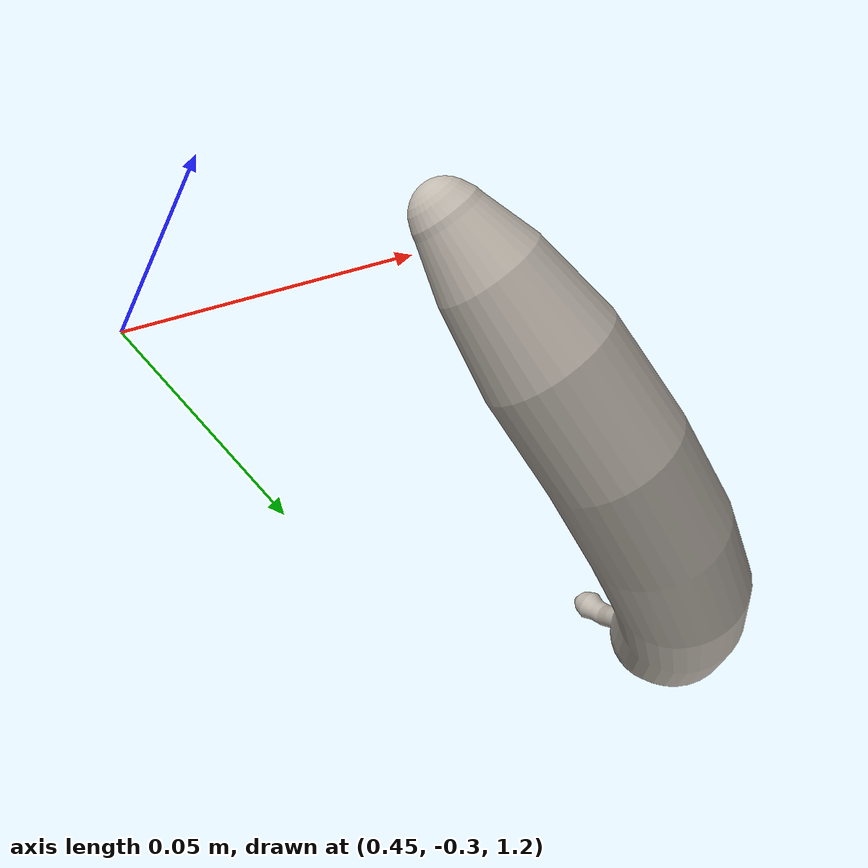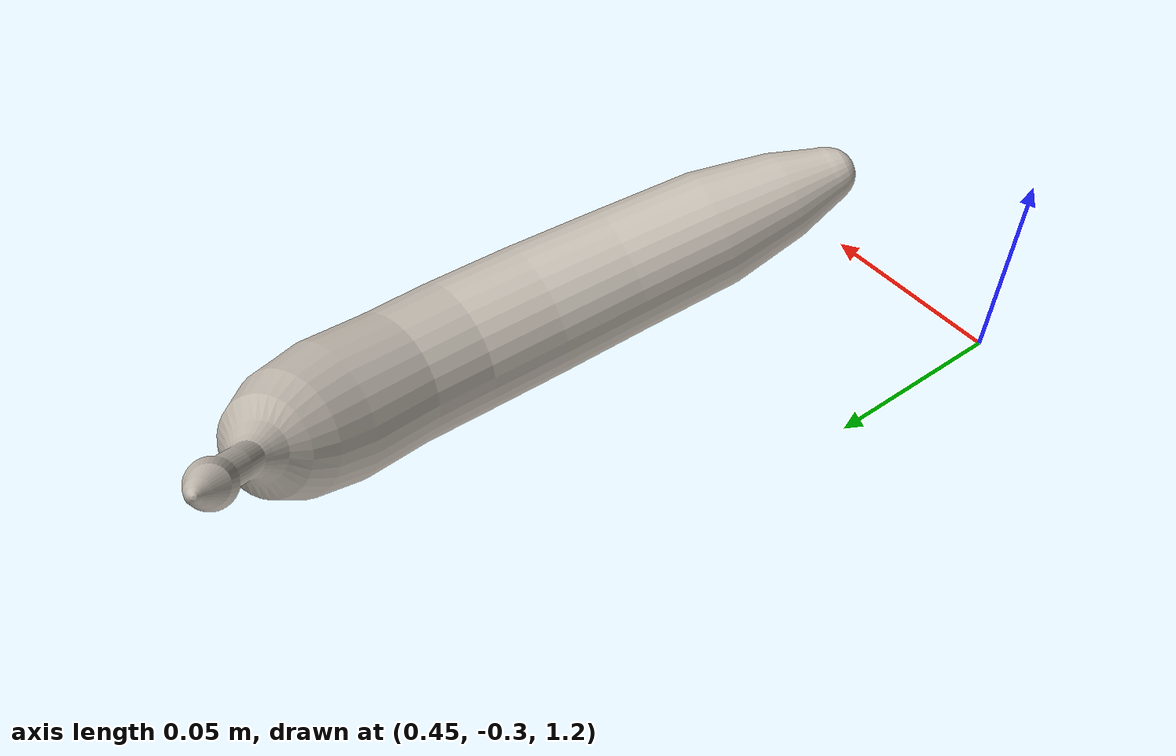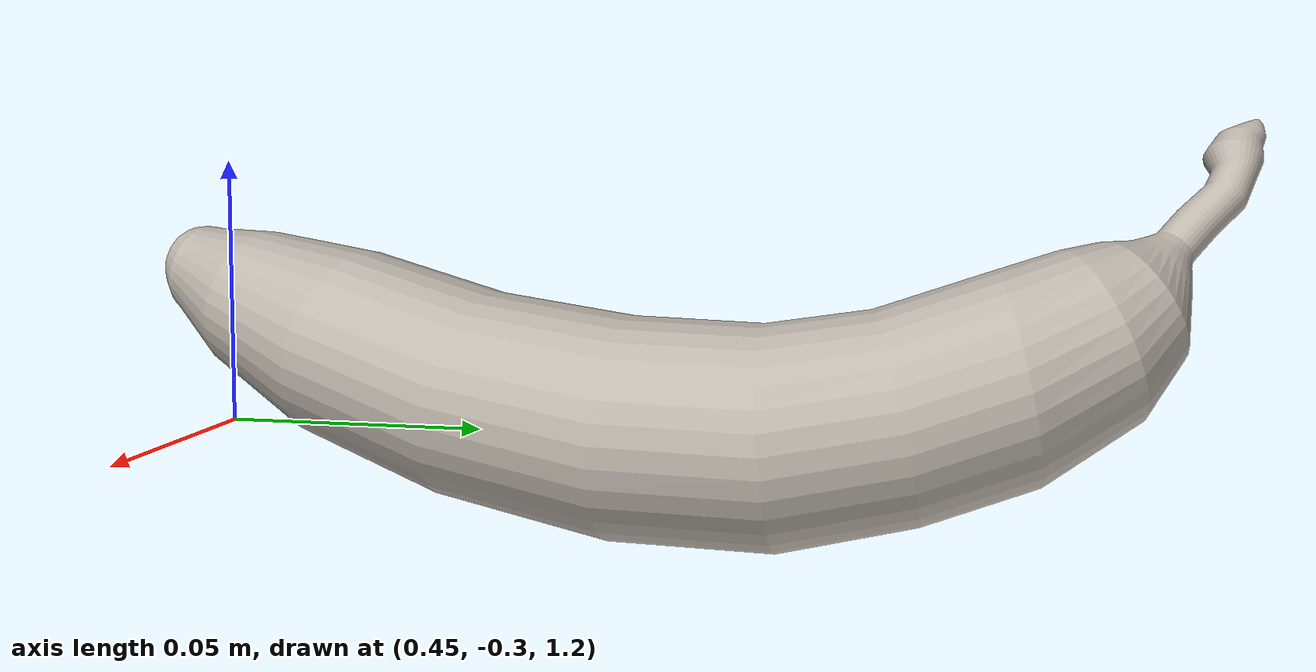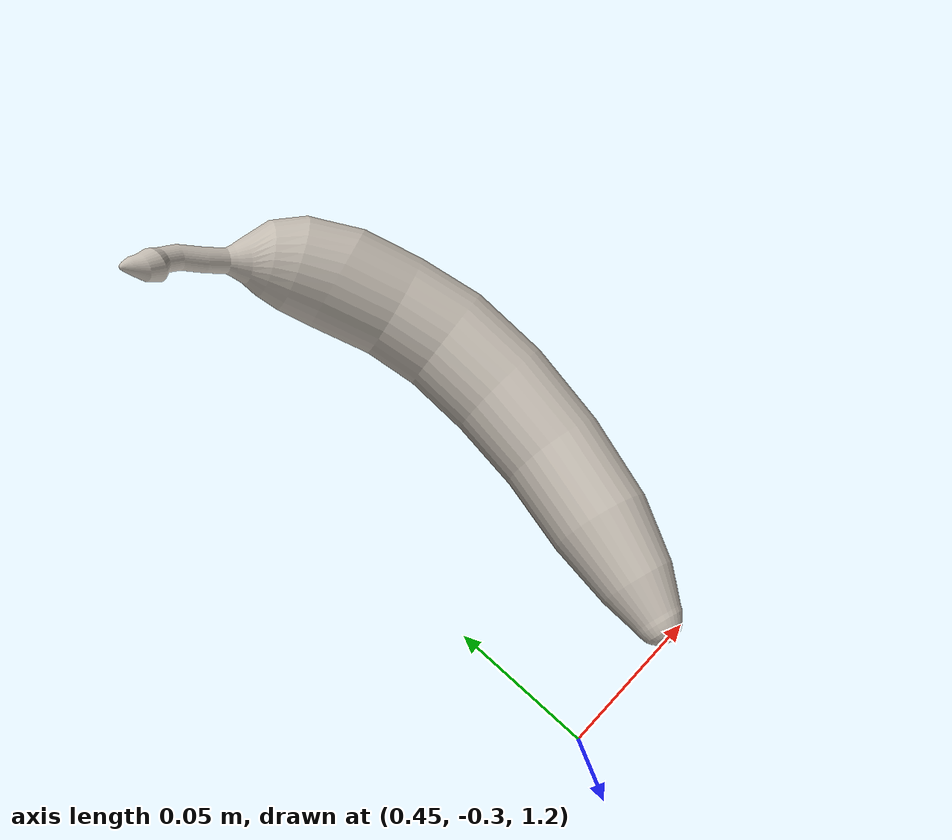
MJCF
<mujoco model="banana_5">
  <asset>
    <mesh file="../objects/bigym/banana_8/visual/model_normalized_0.obj" name="banana_8_model_normalized_0_vis" scale="0.18 0.18 0.18" refquat="0.2705980500730982 0.2705980500730984 0.6532814824381878 0.6532814824381881"/>
    <mesh file="../objects/bigym/banana_8/collision/model_normalized_collision_22.obj" name="banana_8_model_normalized_collision_22._coll" scale="0.18 0.18 0.18" refquat="0.2705980500730982 0.2705980500730984 0.6532814824381878 0.6532814824381881"/>
    <mesh file="../objects/bigym/banana_8/collision/model_normalized_collision_23.obj" name="banana_8_model_normalized_collision_23._coll" scale="0.18 0.18 0.18" refquat="0.2705980500730982 0.2705980500730984 0.6532814824381878 0.6532814824381881"/>
    <mesh file="../objects/bigym/banana_8/collision/model_normalized_collision_21.obj" name="banana_8_model_normalized_collision_21._coll" scale="0.18 0.18 0.18" refquat="0.2705980500730982 0.2705980500730984 0.6532814824381878 0.6532814824381881"/>
    <mesh file="../objects/bigym/banana_8/collision/model_normalized_collision_20.obj" name="banana_8_model_normalized_collision_20._coll" scale="0.18 0.18 0.18" refquat="0.2705980500730982 0.2705980500730984 0.6532814824381878 0.6532814824381881"/>
    <mesh file="../objects/bigym/banana_8/collision/model_normalized_collision_24.obj" name="banana_8_model_normalized_collision_24._coll" scale="0.18 0.18 0.18" refquat="0.2705980500730982 0.2705980500730984 0.6532814824381878 0.6532814824381881"/>
    <mesh file="../objects/bigym/banana_8/collision/model_normalized_collision_30.obj" name="banana_8_model_normalized_collision_30._coll" scale="0.18 0.18 0.18" refquat="0.2705980500730982 0.2705980500730984 0.6532814824381878 0.6532814824381881"/>
    <mesh file="../objects/bigym/banana_8/collision/model_normalized_collision_18.obj" name="banana_8_model_normalized_collision_18._coll" scale="0.18 0.18 0.18" refquat="0.2705980500730982 0.2705980500730984 0.6532814824381878 0.6532814824381881"/>
    <mesh file="../objects/bigym/banana_8/collision/model_normalized_collision_19.obj" name="banana_8_model_normalized_collision_19._coll" scale="0.18 0.18 0.18" refquat="0.2705980500730982 0.2705980500730984 0.6532814824381878 0.6532814824381881"/>
    <mesh file="../objects/bigym/banana_8/collision/model_normalized_collision_31.obj" name="banana_8_model_normalized_collision_31._coll" scale="0.18 0.18 0.18" refquat="0.2705980500730982 0.2705980500730984 0.6532814824381878 0.6532814824381881"/>
    <mesh file="../objects/bigym/banana_8/collision/model_normalized_collision_25.obj" name="banana_8_model_normalized_collision_25._coll" scale="0.18 0.18 0.18" refquat="0.2705980500730982 0.2705980500730984 0.6532814824381878 0.6532814824381881"/>
    <mesh file="../objects/bigym/banana_8/collision/model_normalized_collision_27.obj" name="banana_8_model_normalized_collision_27._coll" scale="0.18 0.18 0.18" refquat="0.2705980500730982 0.2705980500730984 0.6532814824381878 0.6532814824381881"/>
    <mesh file="../objects/bigym/banana_8/collision/model_normalized_collision_26.obj" name="banana_8_model_normalized_collision_26._coll" scale="0.18 0.18 0.18" refquat="0.2705980500730982 0.2705980500730984 0.6532814824381878 0.6532814824381881"/>
    <mesh file="../objects/bigym/banana_8/collision/model_normalized_collision_9.obj" name="banana_8_model_normalized_collision_9._coll" scale="0.18 0.18 0.18" refquat="0.2705980500730982 0.2705980500730984 0.6532814824381878 0.6532814824381881"/>
    <mesh file="../objects/bigym/banana_8/collision/model_normalized_collision_8.obj" name="banana_8_model_normalized_collision_8._coll" scale="0.18 0.18 0.18" refquat="0.2705980500730982 0.2705980500730984 0.6532814824381878 0.6532814824381881"/>
    <mesh file="../objects/bigym/banana_8/collision/model_normalized_collision_6.obj" name="banana_8_model_normalized_collision_6._coll" scale="0.18 0.18 0.18" refquat="0.2705980500730982 0.2705980500730984 0.6532814824381878 0.6532814824381881"/>
    <mesh file="../objects/bigym/banana_8/collision/model_normalized_collision_7.obj" name="banana_8_model_normalized_collision_7._coll" scale="0.18 0.18 0.18" refquat="0.2705980500730982 0.2705980500730984 0.6532814824381878 0.6532814824381881"/>
    <mesh file="../objects/bigym/banana_8/collision/model_normalized_collision_5.obj" name="banana_8_model_normalized_collision_5._coll" scale="0.18 0.18 0.18" refquat="0.2705980500730982 0.2705980500730984 0.6532814824381878 0.6532814824381881"/>
    <mesh file="../objects/bigym/banana_8/collision/model_normalized_collision_4.obj" name="banana_8_model_normalized_collision_4._coll" scale="0.18 0.18 0.18" refquat="0.2705980500730982 0.2705980500730984 0.6532814824381878 0.6532814824381881"/>
    <mesh file="../objects/bigym/banana_8/collision/model_normalized_collision_0.obj" name="banana_8_model_normalized_collision_0._coll" scale="0.18 0.18 0.18" refquat="0.2705980500730982 0.2705980500730984 0.6532814824381878 0.6532814824381881"/>
    <mesh file="../objects/bigym/banana_8/collision/model_normalized_collision_1.obj" name="banana_8_model_normalized_collision_1._coll" scale="0.18 0.18 0.18" refquat="0.2705980500730982 0.2705980500730984 0.6532814824381878 0.6532814824381881"/>
    <mesh file="../objects/bigym/banana_8/collision/model_normalized_collision_3.obj" name="banana_8_model_normalized_collision_3._coll" scale="0.18 0.18 0.18" refquat="0.2705980500730982 0.2705980500730984 0.6532814824381878 0.6532814824381881"/>
    <mesh file="../objects/bigym/banana_8/collision/model_normalized_collision_2.obj" name="banana_8_model_normalized_collision_2._coll" scale="0.18 0.18 0.18" refquat="0.2705980500730982 0.2705980500730984 0.6532814824381878 0.6532814824381881"/>
    <mesh file="../objects/bigym/banana_8/collision/model_normalized_collision_17.obj" name="banana_8_model_normalized_collision_17._coll" scale="0.18 0.18 0.18" refquat="0.2705980500730982 0.2705980500730984 0.6532814824381878 0.6532814824381881"/>
    <mesh file="../objects/bigym/banana_8/collision/model_normalized_collision_16.obj" name="banana_8_model_normalized_collision_16._coll" scale="0.18 0.18 0.18" refquat="0.2705980500730982 0.2705980500730984 0.6532814824381878 0.6532814824381881"/>
    <mesh file="../objects/bigym/banana_8/collision/model_normalized_collision_28.obj" name="banana_8_model_normalized_collision_28._coll" scale="0.18 0.18 0.18" refquat="0.2705980500730982 0.2705980500730984 0.6532814824381878 0.6532814824381881"/>
    <mesh file="../objects/bigym/banana_8/collision/model_normalized_collision_14.obj" name="banana_8_model_normalized_collision_14._coll" scale="0.18 0.18 0.18" refquat="0.2705980500730982 0.2705980500730984 0.6532814824381878 0.6532814824381881"/>
    <mesh file="../objects/bigym/banana_8/collision/model_normalized_collision_15.obj" name="banana_8_model_normalized_collision_15._coll" scale="0.18 0.18 0.18" refquat="0.2705980500730982 0.2705980500730984 0.6532814824381878 0.6532814824381881"/>
    <mesh file="../objects/bigym/banana_8/collision/model_normalized_collision_29.obj" name="banana_8_model_normalized_collision_29._coll" scale="0.18 0.18 0.18" refquat="0.2705980500730982 0.2705980500730984 0.6532814824381878 0.6532814824381881"/>
    <mesh file="../objects/bigym/banana_8/collision/model_normalized_collision_11.obj" name="banana_8_model_normalized_collision_11._coll" scale="0.18 0.18 0.18" refquat="0.2705980500730982 0.2705980500730984 0.6532814824381878 0.6532814824381881"/>
    <mesh file="../objects/bigym/banana_8/collision/model_normalized_collision_10.obj" name="banana_8_model_normalized_collision_10._coll" scale="0.18 0.18 0.18" refquat="0.2705980500730982 0.2705980500730984 0.6532814824381878 0.6532814824381881"/>
    <mesh file="../objects/bigym/banana_8/collision/model_normalized_collision_12.obj" name="banana_8_model_normalized_collision_12._coll" scale="0.18 0.18 0.18" refquat="0.2705980500730982 0.2705980500730984 0.6532814824381878 0.6532814824381881"/>
    <mesh file="../objects/bigym/banana_8/collision/model_normalized_collision_13.obj" name="banana_8_model_normalized_collision_13._coll" scale="0.18 0.18 0.18" refquat="0.2705980500730982 0.2705980500730984 0.6532814824381878 0.6532814824381881"/>
    <texture type="2d" name="banana_8_image0" file="../objects/bigym/banana_8/visual/image0.png"/>
    <material name="Banana_Material" texture="banana_8_image0" specular="0.5" shininess="0.359999993"/>
  </asset>

    <default class="main">
    <default class="banana_8">
      <default class="banana_8_visual">
        <geom type="mesh" contype="0" conaffinity="0" group="2"/>
      </default>
      <default class="banana_8_collision">
        <geom type="mesh" group="3" solref="0.004" solimp="0.95 0.98" condim="3"/>
      </default>
    </default>
  </default>

  <worldbody>
      <body name="banana_8_object" pos="0.5 -0.2 1.23" >
        <freejoint/>
        <geom class="banana_8_visual" mesh="banana_8_model_normalized_0_vis" material="Banana_Material"  mass="0.3"/>
        <geom class="banana_8_collision" mesh="banana_8_model_normalized_collision_22._coll" rgba="0.8 0.8 0.8 0.0"/>
        <geom class="banana_8_collision" mesh="banana_8_model_normalized_collision_23._coll" rgba="0.8 0.8 0.8 0.0"/>
        <geom class="banana_8_collision" mesh="banana_8_model_normalized_collision_21._coll" rgba="0.8 0.8 0.8 0.0"/>
        <geom class="banana_8_collision" mesh="banana_8_model_normalized_collision_20._coll" rgba="0.8 0.8 0.8 0.0"/>
        <geom class="banana_8_collision" mesh="banana_8_model_normalized_collision_24._coll" rgba="0.8 0.8 0.8 0.0"/>
        <geom class="banana_8_collision" mesh="banana_8_model_normalized_collision_30._coll" rgba="0.8 0.8 0.8 0.0"/>
        <geom class="banana_8_collision" mesh="banana_8_model_normalized_collision_18._coll" rgba="0.8 0.8 0.8 0.0"/>
        <geom class="banana_8_collision" mesh="banana_8_model_normalized_collision_19._coll" rgba="0.8 0.8 0.8 0.0"/>
        <geom class="banana_8_collision" mesh="banana_8_model_normalized_collision_31._coll" rgba="0.8 0.8 0.8 0.0"/>
        <geom class="banana_8_collision" mesh="banana_8_model_normalized_collision_25._coll" rgba="0.8 0.8 0.8 0.0"/>
        <geom class="banana_8_collision" mesh="banana_8_model_normalized_collision_27._coll" rgba="0.8 0.8 0.8 0.0"/>
        <geom class="banana_8_collision" mesh="banana_8_model_normalized_collision_26._coll" rgba="0.8 0.8 0.8 0.0"/>
        <geom class="banana_8_collision" mesh="banana_8_model_normalized_collision_9._coll" rgba="0.8 0.8 0.8 0.0"/>
        <geom class="banana_8_collision" mesh="banana_8_model_normalized_collision_8._coll" rgba="0.8 0.8 0.8 0.0"/>
        <geom class="banana_8_collision" mesh="banana_8_model_normalized_collision_6._coll" rgba="0.8 0.8 0.8 0.0"/>
        <geom class="banana_8_collision" mesh="banana_8_model_normalized_collision_7._coll" rgba="0.8 0.8 0.8 0.0"/>
        <geom class="banana_8_collision" mesh="banana_8_model_normalized_collision_5._coll" rgba="0.8 0.8 0.8 0.0"/>
        <geom class="banana_8_collision" mesh="banana_8_model_normalized_collision_4._coll" rgba="0.8 0.8 0.8 0.0"/>
        <geom class="banana_8_collision" mesh="banana_8_model_normalized_collision_0._coll" rgba="0.8 0.8 0.8 0.0"/>
        <geom class="banana_8_collision" mesh="banana_8_model_normalized_collision_1._coll" rgba="0.8 0.8 0.8 0.0"/>
        <geom class="banana_8_collision" mesh="banana_8_model_normalized_collision_3._coll" rgba="0.8 0.8 0.8 0.0"/>
        <geom class="banana_8_collision" mesh="banana_8_model_normalized_collision_2._coll" rgba="0.8 0.8 0.8 0.0"/>
        <geom class="banana_8_collision" mesh="banana_8_model_normalized_collision_17._coll" rgba="0.8 0.8 0.8 0.0"/>
        <geom class="banana_8_collision" mesh="banana_8_model_normalized_collision_16._coll" rgba="0.8 0.8 0.8 0.0"/>
        <geom class="banana_8_collision" mesh="banana_8_model_normalized_collision_28._coll" rgba="0.8 0.8 0.8 0.0"/>
        <geom class="banana_8_collision" mesh="banana_8_model_normalized_collision_14._coll" rgba="0.8 0.8 0.8 0.0"/>
        <geom class="banana_8_collision" mesh="banana_8_model_normalized_collision_15._coll" rgba="0.8 0.8 0.8 0.0"/>
        <geom class="banana_8_collision" mesh="banana_8_model_normalized_collision_29._coll" rgba="0.8 0.8 0.8 0.0"/>
        <geom class="banana_8_collision" mesh="banana_8_model_normalized_collision_11._coll" rgba="0.8 0.8 0.8 0.0"/>
        <geom class="banana_8_collision" mesh="banana_8_model_normalized_collision_10._coll" rgba="0.8 0.8 0.8 0.0"/>
        <geom class="banana_8_collision" mesh="banana_8_model_normalized_collision_12._coll" rgba="0.8 0.8 0.8 0.0"/>
        <geom class="banana_8_collision" mesh="banana_8_model_normalized_collision_13._coll" rgba="0.8 0.8 0.8 0.0"/>
      </body>
  </worldbody>
</mujoco>
